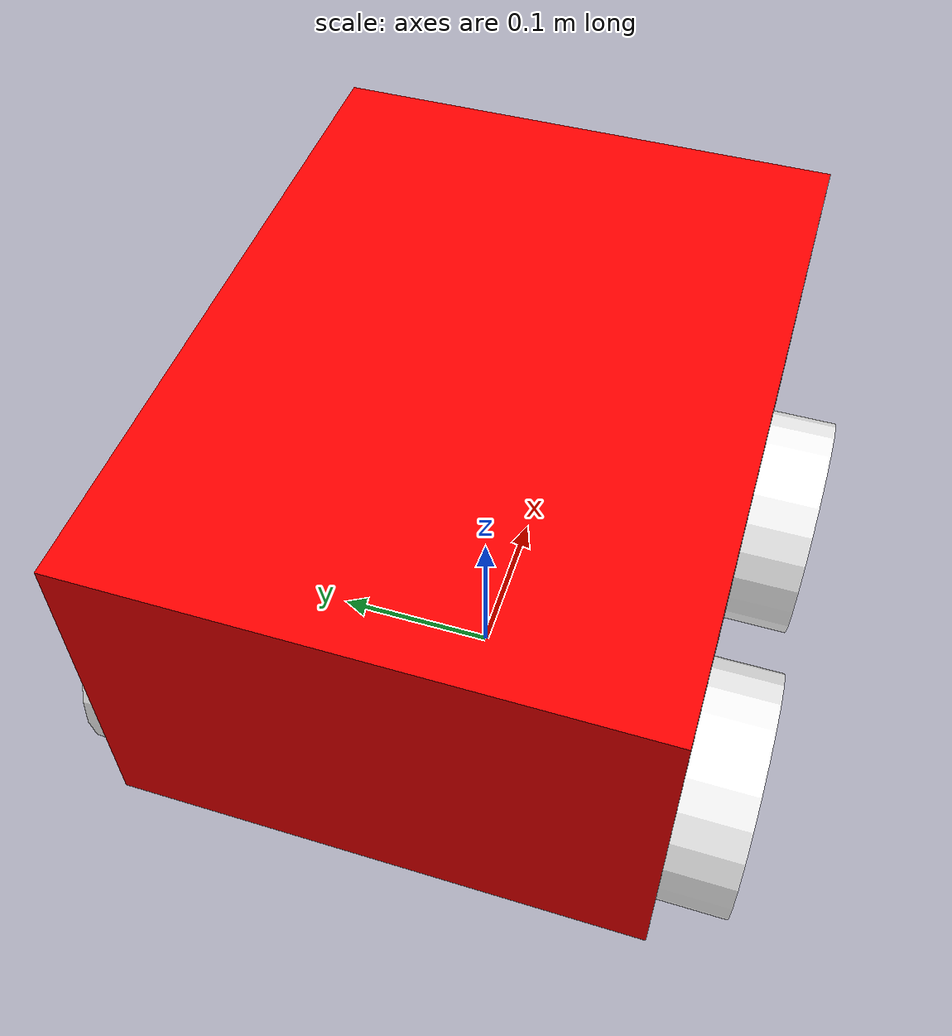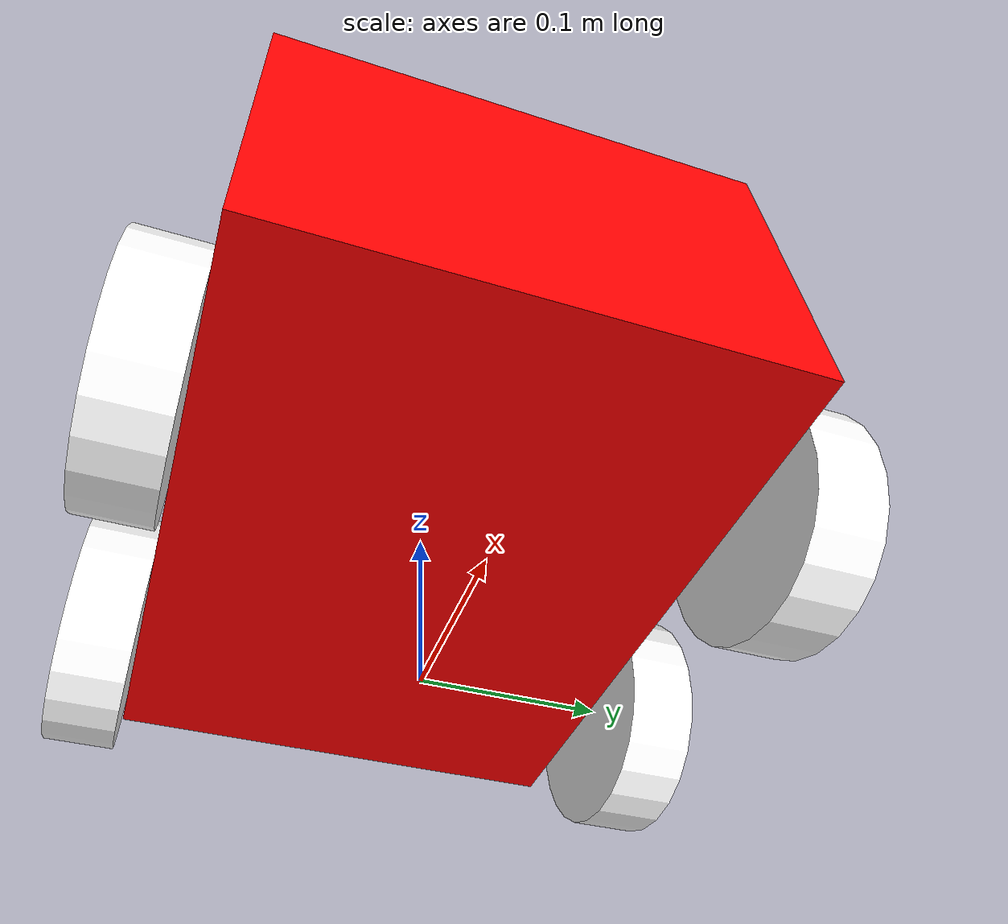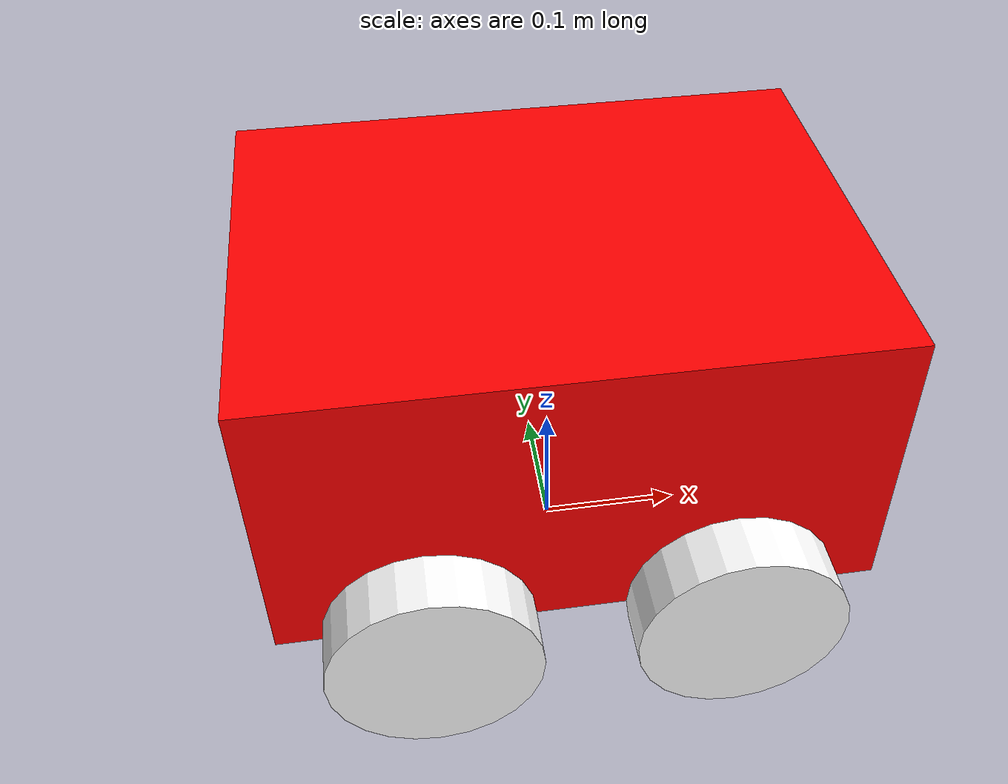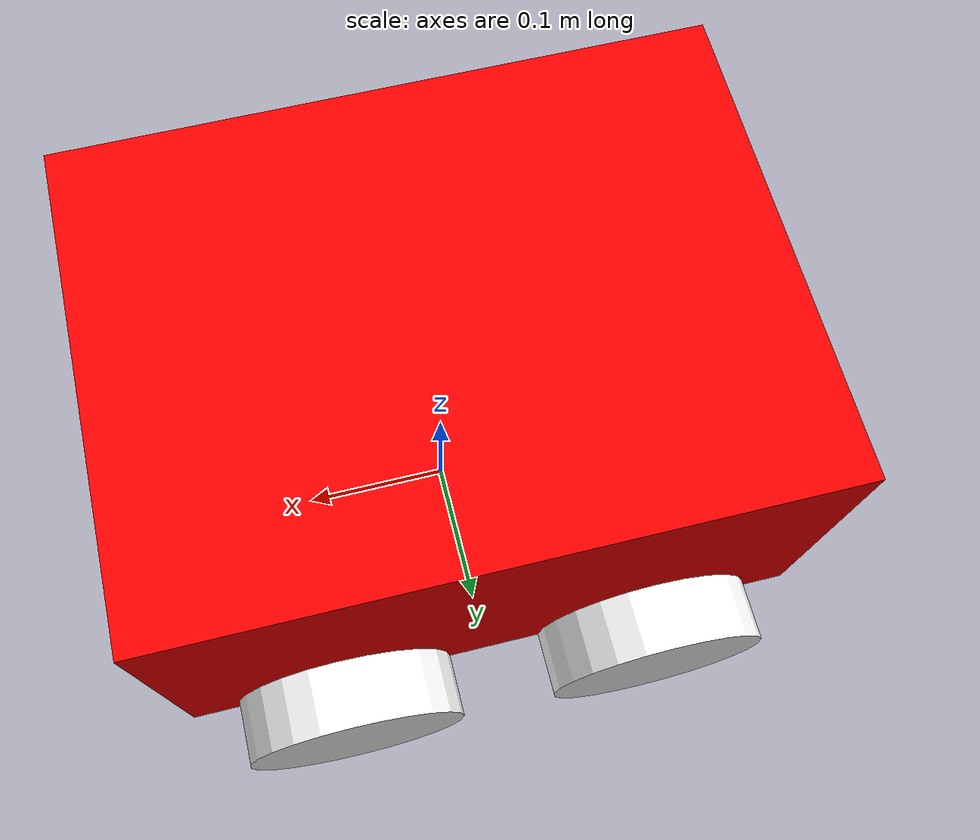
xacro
<?xml version="1.0"?>
<robot xmlns:xacro="http://www.ros.org/wiki/xacro"  name="robot">
    <xacro:include filename="inertial_macros.xacro"/>

<!--BASE FOOTPRINT LINK-->
    <link name="base_footprint">

    </link>

<!--BASE LINK-->
    <link name="base_link">
        <visual name="">
            <origin xyz="0.0 0.0 0.1" rpy="0.0 0.0 0.0"/>
            <geometry>
                <box size="0.4 0.3 0.2"/>
            </geometry>
            <material name="">
                <color rgba="1.0 0.0 0.0 1.0"/>
            </material>
        </visual>
        <collision>
            <origin xyz="0.0 0.0 0.1" rpy="0.0 0.0 0.0"/>
            <geometry>
                <box size="0.4 0.3 0.2"/>
            </geometry>
        </collision>
        <xacro:inertial_box mass = "0.05" x = "0.4" y = "0.3" z = "0.2">
            <origin xyz="0.0 0.0 0.1" rpy="0.0 0.0 0.0"/>

        </xacro:inertial_box>
    </link>

    <gazebo reference="base_link">
        <material>Gazebo/Red</material>
    </gazebo>

<!--LEFT WHEEL FRONT LINK-->
    <link name="left_wheel_front">
        <visual name="">
            <origin xyz="0.0 0.0 0.0" rpy="0.0 0.0 0.0"/>
            <geometry>
                <cylinder radius="0.07" length="0.04"/>
            </geometry>
            <material name="">
                <color rgba="1.0 1.0 1.0 1.0"/>
            </material>
        </visual>
        <collision>
            <origin xyz="0.0 0.0 0.0" rpy="0.0 0.0 0.0"/>
            <geometry>
                <cylinder radius="0.07" length="0.04"/>
            </geometry>
        </collision>
        <xacro:inertial_cylinder mass = "0.01" length = "0.04" radius = "0.07">
            <origin xyz="0 0 0" rpy="0.0 0.0 0.0"/>

        </xacro:inertial_cylinder>

    </link>
    <gazebo reference="left_wheel_front">
        <material>Gazebo/White</material>
    </gazebo>

<!--LEFT WHEEL BACK LINK-->
    <link name="left_wheel_back">
        <visual name="">
            <origin xyz="0.0 0.0 0.0" rpy="0.0 0.0 0.0"/>
            <geometry>
                <cylinder radius="0.07" length="0.04"/>
            </geometry>
            <material name="">
                <color rgba="1.0 1.0 1.0 1.0"/>
            </material>
        </visual>
        <collision>
            <origin xyz="0.0 0.0 0.0" rpy="0.0 0.0 0.0"/>
            <geometry>
                <cylinder radius="0.07" length="0.04"/>
            </geometry>
        </collision>
        <xacro:inertial_cylinder mass = "0.01" length = "0.04" radius = "0.07">
            <origin xyz="0 0 0" rpy="0.0 0.0 0.0"/>

        </xacro:inertial_cylinder>

    </link>
    <gazebo reference="left_wheel_back">
        <material>Gazebo/White</material>
    </gazebo>

<!--RIGHT WHEEL FRONT LINK-->
    <link name="right_wheel_front">
        <visual name="">
            <origin xyz="0.0 0.0 0.0" rpy="0.0 0.0 0.0"/>
            <geometry>
                <cylinder radius="0.07" length="0.04"/>
            </geometry>
            <material name="">
                <color rgba="1.0 1.0 1.0 1.0"/>
            </material>
        </visual>
        <collision>
            <origin xyz="0.0 0.0 0.0" rpy="0.0 0.0 0.0"/>
            <geometry>
                <cylinder radius="0.07" length="0.04"/>
            </geometry>
        </collision>
        <xacro:inertial_cylinder mass = "0.01" length = "0.04" radius = "0.07">
            <origin xyz="0 0 0" rpy="0.0 0.0 0.0"/>
        </xacro:inertial_cylinder>

    </link>
    <gazebo reference="right_wheel_front">
        <material>Gazebo/White</material>
    </gazebo>

<!--RIGHT WHEEL BACK LINK-->
    <link name="right_wheel_back">
        <visual name="">
            <origin xyz="0.0 0.0 0.0" rpy="0.0 0.0 0.0"/>
            <geometry>
                <cylinder radius="0.07" length="0.04"/>
            </geometry>
            <material name="">
                <color rgba="1.0 1.0 1.0 1.0"/>
            </material>
        </visual>
        <collision>
            <origin xyz="0.0 0.0 0.0" rpy="0.0 0.0 0.0"/>
            <geometry>
                <cylinder radius="0.07" length="0.04"/>
            </geometry>
        </collision>
        <xacro:inertial_cylinder mass = "0.01" length = "0.04" radius = "0.07">
            <origin xyz="0 0 0" rpy="0.0 0.0 0.0"/>

        </xacro:inertial_cylinder>

    </link>
    <gazebo reference="right_wheel_back">
        <material>Gazebo/White</material>
    </gazebo>

<!--BASE-FOOTPRINT TO BASE LINK JOINT-->
    <joint name="base_footprint" type="fixed">
        <origin xyz="0.0 0.0 0.07" rpy="0.0 0.0 0.0"/>
        <parent link="base_footprint"/>
        <child link="base_link"/>
    </joint>

<!--BASE LINK TO LEFT WHEEL FRONT JOINT-->
    <joint name="left_wheel_front_joint" type="continuous">
        <origin xyz="0.1 0.17 0.0" rpy="${pi/2} 0.0 0.0"/>
        <parent link="base_link"/>
        <child link="left_wheel_front"/>
        <axis xyz="0.0 0.0 -1.0"/>
        <limit lower="0.0" upper="0.0" effort="0.0" velocity="0.0"/>
    </joint>

<!--BASE LINK TO LEFT WHEEL BACK JOINT-->
    <joint name="left_wheel_back_joint" type="continuous">
        <origin xyz="-0.1 0.17 0.0" rpy="${pi/2} 0.0 0.0"/>
        <parent link="base_link"/>
        <child link="left_wheel_back"/>
        <axis xyz="0.0 0.0 -1.0"/>
        <limit lower="0.0" upper="0.0" effort="0.0" velocity="0.0"/>
    </joint>

<!--BASE LINK TO RIGHT WHEEL FRONT JOINT-->
    <joint name="right_wheel_front_joint" type="continuous">
        <origin xyz="0.1 -0.17 0.0" rpy="${pi/2} 0.0 0.0"/>
        <parent link="base_link"/>
        <child link="right_wheel_front"/>
        <axis xyz="0.0 0.0 -1.0"/>
    </joint>

<!--BASE LINK TO RIGHT WHEEL BACK JOINT-->
    <joint name="right_wheel_back_joint" type="continuous">
        <origin xyz="-0.1 -0.17 0.0" rpy="${pi/2} 0.0 0.0"/>
        <parent link="base_link"/>
        <child link="right_wheel_back"/>
        <axis xyz="0.0 0.0 -1.0"/>
    </joint>

</robot>
